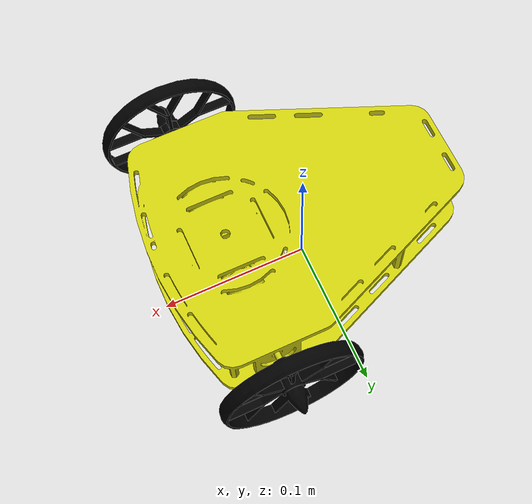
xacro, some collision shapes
<?xml version="1.0"?>
<robot xmlns:xacro="http://www.ros.org/wiki/xacro" name="Puzzlebot_Hacker_Ed.">

<xacro:arg name="prefix" default=""/>

<!-- files for gazebo costumization -->
<xacro:include filename="$(find puzzlebot_description)/urdf/mcr2_mechanical/puzzlebot_hacker_base.urdf.xacro"/>
<xacro:include filename="$(find puzzlebot_description)/urdf/mcr2_robots/hacker_ed/parameters_hacker_ed.xacro" />
<xacro:include filename="$(find puzzlebot_description)/urdf/mcr2_misc/materials.xacro" />
<xacro:include filename="$(find puzzlebot_description)/urdf/mcr2_misc/macros.xacro" />

<xacro:include filename="$(find puzzlebot_description)/urdf/mcr2_sensors/laser_camera_bracket.xacro" />
<xacro:include filename="$(find puzzlebot_description)/urdf/mcr2_control/gazebo_control.xacro" />

<!--LINKS-->

<xacro:puzzlebot_hacker_ed_base prefix="$(arg prefix)" />
<xacro:puzzlebot_control prefix="$(arg prefix)" />

</robot>

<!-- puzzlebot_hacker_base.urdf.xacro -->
<robot xmlns:xacro="http://www.ros.org/wiki/xacro" name="puzzlebot_hacker_ed_base">

<xacro:macro name="puzzlebot_hacker_ed_base" params="prefix">

    <!-- Dummy link to fix robot chassis -->
    <link name="${prefix}base_footprint">
    </link>

    <link name="${prefix}base_link">
        <visual>
            <origin xyz="${chassis_mesh_pos_x} ${chassis_mesh_pos_y} ${chassis_mesh_pos_z}" rpy="${chassis_mesh_pos_r} ${chassis_mesh_pos_p} ${chassis_mesh_pos_w}"/>
            <geometry>
                <mesh filename="file://${mesh_puzzlebot_chassis}"/>
            </geometry>
            <material name="yellow"/>
        </visual>

        <collision>
            <origin xyz="${chassis_collision_pos_x} ${chassis_collision_pos_y} ${chassis_collision_pos_z}" rpy="${chassis_collision_pos_r} ${chassis_collision_pos_p} ${chassis_collision_pos_w}"/>
            <geometry>
                <box size="${chassis_length} ${chassis_width} ${chassis_height}"/>
            </geometry>
        </collision>

        <inertial>
            <origin xyz="-${chassis_inertia_pos_x} ${chassis_inertia_pos_y} ${chassis_inertia_pos_z}" rpy="${chassis_inertia_pos_r} ${chassis_inertia_pos_p} ${chassis_inertia_pos_w}"/>
            <mass value="${chassis_mass}"/>
            <xacro:box_inertia mass="${chassis_mass}" x="${chassis_length}" y="${chassis_width}" z="${chassis_height}" />
        </inertial>
    </link>

    <link name="${prefix}wheel_left_link">
        <visual>
            <origin xyz="${wheel_mesh_pos_x} ${wheel_mesh_pos_y} ${wheel_mesh_pos_z}" rpy="${wheel_mesh_pos_r} ${wheel_mesh_pos_p} ${wheel_mesh_pos_w}" />
            <geometry>
                <mesh filename="file://${mesh_puzzlebot_wheel}"/>
            </geometry>
            <material name="black"/>
        </visual>

        <collision>
            <origin xyz="${wheel_collision_pos_x} ${wheel_collision_pos_y} ${wheel_collision_pos_z}" rpy="${wheel_collision_pos_r} ${wheel_collision_pos_p} ${wheel_collision_pos_w}"/>
            <geometry>
                <cylinder length="${wheel_height}" radius="${wheel_radius}" />
            </geometry>
        </collision>

        <inertial>
            <origin xyz="${wheel_inertia_pos_x} ${wheel_inertia_pos_y} ${wheel_inertia_pos_z}" rpy="${wheel_inertia_pos_r} ${wheel_inertia_pos_p} ${wheel_inertia_pos_w}"/>
            <mass value="${wheel_mass}"/>
            <xacro:cylinderical_tube_inertia r1="${wheel_radius}" r2="${wheel_radius/4.0}" height="${wheel_height}" mass="${wheel_mass}"/>
        </inertial>
    </link>

    <link name="${prefix}wheel_right_link">
        <visual>
            <origin xyz="${wheel_mesh_pos_x} ${wheel_mesh_pos_y} ${wheel_mesh_pos_z}" rpy="-${wheel_mesh_pos_r} ${wheel_mesh_pos_p} ${wheel_mesh_pos_w}" />
            <geometry>
                <mesh filename="file://${mesh_puzzlebot_wheel}"/>
            </geometry>
            <material name="black"/>
        </visual>

        <collision>
            <origin xyz="${wheel_collision_pos_x} ${wheel_collision_pos_y} ${wheel_collision_pos_z}" rpy="-${wheel_collision_pos_r} ${wheel_collision_pos_p} ${wheel_collision_pos_w}"/>
            <geometry>
                <cylinder length="${wheel_height}" radius="${wheel_radius}" />
            </geometry>
        </collision>

        <inertial>
            <origin xyz="${wheel_inertia_pos_x} ${wheel_inertia_pos_y} ${wheel_inertia_pos_z}" rpy="-${wheel_inertia_pos_r} ${wheel_inertia_pos_p} ${wheel_inertia_pos_w}"/>
            <mass value="${wheel_mass}"/>
            <xacro:cylinderical_tube_inertia r1="${wheel_radius}" r2="${wheel_radius/4.0}" height="${wheel_height}" mass="${wheel_mass}"/>
        </inertial>
    </link>

    <link name="${prefix}caster_holder_link">
        <visual>
            <origin xyz="${casterholder_mesh_pos_x} ${casterholder_mesh_pos_y} ${casterholder_mesh_pos_z}" rpy="${casterholder_mesh_pos_r} ${casterholder_mesh_pos_p} ${casterholder_mesh_pos_w}"/>
            <geometry>
                <mesh filename="file://${mesh_puzzlebot_caster}"/>
            </geometry>
            <material name="black"/>
        </visual>

        <collision>
            <origin xyz="${casterholder_collision_pos_x} ${casterholder_collision_pos_y} ${casterholder_collision_pos_z}" rpy="${casterholder_collision_pos_r} ${casterholder_collision_pos_p} ${casterholder_collision_pos_w}"/>
            <geometry>
                <box size="${casterholder_length} ${casterholder_width} ${casterholder_height}"/>
            </geometry>
        </collision>

        <inertial>
            <origin xyz="${casterholder_inertia_pos_x} ${casterholder_inertia_pos_y} ${casterholder_inertia_pos_z}" rpy="${casterholder_inertia_pos_r} ${casterholder_inertia_pos_p} ${casterholder_inertia_pos_w}"/>
            <mass value="${casterholder_mass}"/>
            <xacro:box_inertia mass="${casterholder_mass}" x="${casterholder_length}" y="${casterholder_width}" z="${casterholder_height}" />
        </inertial>
    </link>

    <link name="${prefix}wheel_caster_link">
        <collision>
            <origin xyz="${casterball_collision_pos_x} ${casterball_collision_pos_y} ${casterball_collision_pos_z}" rpy="${casterball_collision_pos_r} ${casterball_collision_pos_p} ${casterball_collision_pos_w}"/>
            <geometry>
                <sphere radius="${casterball_radius}"/>
            </geometry>
        </collision>

        <inertial>
            <origin xyz="${casterball_inertia_pos_x} ${casterball_inertia_pos_y} ${casterball_inertia_pos_z}" rpy="${casterball_inertia_pos_r} ${casterball_inertia_pos_p} ${casterball_inertia_pos_w}"/>
            <mass value="${casterball_mass}"/>
            <xacro:solid_sphere_inertia mass="${casterball_mass}" radius="${casterball_radius}" />
        </inertial>
    </link>

    <!--JOINTS-->

    <joint name="${prefix}chassis_joint" type="fixed">
        <parent link="${prefix}base_footprint"/>
        <child link="${prefix}base_link"/>
        <origin xyz="${chassis_pos_x} ${chassis_pos_y} ${chassis_pos_z}" rpy="${chassis_pos_r} ${chassis_pos_p} ${chassis_pos_w}"/>
    </joint>

    <joint name="${prefix}wheel_right_joint" type="continuous">
        <parent link="${prefix}base_link"/>
        <child link="${prefix}wheel_right_link"/>
        <origin xyz="${wheel_pos_x} -${wheel_pos_y} ${wheel_pos_z}" rpy="${wheel_pos_r} ${wheel_pos_p} ${wheel_pos_w}"/>
        <axis xyz="0 1 0"/>
    </joint>

    <joint name="${prefix}wheel_left_joint" type="continuous">
        <parent link="${prefix}base_link"/>
        <child link="${prefix}wheel_left_link"/>
        <origin xyz="${wheel_pos_x} ${wheel_pos_y} ${wheel_pos_z}" rpy="${wheel_pos_r} ${wheel_pos_p} ${wheel_pos_w}"/>
        <axis xyz="0 1 0"/>
    </joint>

    <joint name="${prefix}caster_holder_joint" type="fixed">
        <parent link="${prefix}base_link"/>
        <child link="${prefix}caster_holder_link"/>
        <origin xyz="${casterholder_pos_x} ${casterholder_pos_y} ${casterholder_pos_z}" rpy="${casterholder_pos_r} ${casterholder_pos_p} ${casterholder_pos_w}"/>
    </joint>

    <joint name="${prefix}wheel_caster_joint" type="fixed">
        <parent link="${prefix}caster_holder_link"/>
        <child link="${prefix}wheel_caster_link"/>
        <origin xyz="${casterball_pos_x} ${casterball_pos_y} ${casterball_pos_z}" rpy="${casterball_pos_r} ${casterball_pos_p} ${casterball_pos_w}"/>
    </joint>

    <gazebo reference="${prefix}wheel_left_link">
        <mu1>1.0</mu1>
        <mu2>1.0</mu2>
        <kp>700000.0</kp>
        <kd>80.0</kd>
        <minDepth>0.001</minDepth>
        <maxVel>0.1</maxVel>
        <material>Gazebo/Black</material>
        <fdir1>1 0 0</fdir1>
    </gazebo>

    <gazebo reference="${prefix}wheel_right_link">
        <mu1>1.0</mu1>
        <mu2>1.0</mu2>
        <kp>700000.0</kp>
        <kd>80.0</kd>
        <minDepth>0.001</minDepth>
        <maxVel>0.1</maxVel>
        <material>Gazebo/Black</material>
        <fdir1>1 0 0</fdir1>
    </gazebo>

    <gazebo reference="${prefix}wheel_caster_link">
        <mu1>0.08</mu1>
        <mu2>0.08</mu2>
        <kp>700000.0</kp>
        <kd>80.0</kd>
        <minDepth>0.001</minDepth>
        <maxVel>0.1</maxVel>
        <fdir1>1 0 0</fdir1>
        <material>Gazebo/Black</material>
    </gazebo>

</xacro:macro>
</robot>

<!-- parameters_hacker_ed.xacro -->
<robot xmlns:xacro="http://www.ros.org/wiki/xacro">

    <!--General parameters-->
    <xacro:property name="PI" value="3.1415926535897931"/>

    <!--Puzzlebot parameters-->
        <!--General parameters-->
            <xacro:property name="wheel_base_distance" value="0.19"/>

    <!--Chassis-->
        <!--Chassis Inertial/Collision parameters-->
            <xacro:property name="chassis_mass" value="0.351"/>
            <xacro:property name="chassis_length" value="0.2"/>
            <xacro:property name="chassis_width" value="0.16"/>
            <xacro:property name="chassis_height" value="0.0503"/>

            <xacro:property name="chassis_inertia_pos_x" value="0.00"/>
            <xacro:property name="chassis_inertia_pos_y" value="0.0"/>
            <xacro:property name="chassis_inertia_pos_z" value="0.00"/>
            <xacro:property name="chassis_inertia_pos_r" value="0.00"/>
            <xacro:property name="chassis_inertia_pos_p" value="0.0"/>
            <xacro:property name="chassis_inertia_pos_w" value="0.0"/>

            <xacro:property name="chassis_collision_pos_x" value="0.0"/>
            <xacro:property name="chassis_collision_pos_y" value="0.0"/>
            <xacro:property name="chassis_collision_pos_z" value="0.0"/>
            <xacro:property name="chassis_collision_pos_r" value="0.0"/>
            <xacro:property name="chassis_collision_pos_p" value="0.0"/>
            <xacro:property name="chassis_collision_pos_w" value="0.0"/>

        <!--Chassis Visual parameters-->
            <xacro:property name="chassis_mesh_pos_x" value="0.0"/>
            <xacro:property name="chassis_mesh_pos_y" value="0.0"/>
            <xacro:property name="chassis_mesh_pos_z" value="0.0"/>
            <xacro:property name="chassis_mesh_pos_r" value="0.0"/>
            <xacro:property name="chassis_mesh_pos_p" value="0.0"/>
            <xacro:property name="chassis_mesh_pos_w" value="0.0"/>

        <!--Chassis Joint parameters-->
            <xacro:property name="chassis_pos_x" value="0.0"/>
            <xacro:property name="chassis_pos_y" value="0.0"/>
            <xacro:property name="chassis_pos_z" value="0.05"/>
            <xacro:property name="chassis_pos_r" value="0.0"/>
            <xacro:property name="chassis_pos_p" value="0.0"/>
            <xacro:property name="chassis_pos_w" value="0.0"/>

    <!--Caster Holder-->
        <!--Caster Holder Inertial/Collision parameters-->
            <xacro:property name="casterholder_mass" value="0.007"/>
            <xacro:property name="casterholder_length" value="0.0175"/>
            <xacro:property name="casterholder_width" value="0.023"/>
            <xacro:property name="casterholder_height" value="0.011150"/>

            <xacro:property name="casterholder_inertia_pos_x" value="0.0"/>
            <xacro:property name="casterholder_inertia_pos_y" value="0.0"/>
            <xacro:property name="casterholder_inertia_pos_z" value="0.0"/>
            <xacro:property name="casterholder_inertia_pos_r" value="0.0"/>
            <xacro:property name="casterholder_inertia_pos_p" value="0.0"/>
            <xacro:property name="casterholder_inertia_pos_w" value="0.0"/>

            <xacro:property name="casterholder_collision_pos_x" value="0.0"/>
            <xacro:property name="casterholder_collision_pos_y" value="0.0"/>
            <xacro:property name="casterholder_collision_pos_z" value="0.0"/>
            <xacro:property name="casterholder_collision_pos_r" value="0.0"/>
            <xacro:property name="casterholder_collision_pos_p" value="0.0"/>
            <xacro:property name="casterholder_collision_pos_w" value="0.0"/>

        <!--Caster Holder Visual parameters-->
            <xacro:property name="casterholder_mesh_pos_x" value="0.0"/>
            <xacro:property name="casterholder_mesh_pos_y" value="0.0"/>
            <xacro:property name="casterholder_mesh_pos_z" value="-0.012"/>
            <xacro:property name="casterholder_mesh_pos_r" value="0.0"/>
            <xacro:property name="casterholder_mesh_pos_p" value="0.0"/>
            <xacro:property name="casterholder_mesh_pos_w" value="0.0"/>

        <!--Caster Holder Joint parameters-->
            <xacro:property name="casterholder_pos_x" value="-0.095"/>
            <xacro:property name="casterholder_pos_y" value="0.0"/>
            <xacro:property name="casterholder_pos_z" value="-0.030725"/>
            <xacro:property name="casterholder_pos_r" value="0.0"/>
            <xacro:property name="casterholder_pos_p" value="0.0"/>
            <xacro:property name="casterholder_pos_w" value="0.0"/>

    <!--Caster Ball-->
        <!--Caster Ball Inertial/Collision parameters-->
            <xacro:property name="casterball_mass" value="0.009"/>
            <xacro:property name="casterball_radius" value="0.0065"/>

            <xacro:property name="casterball_inertia_pos_x" value="0.0"/>
            <xacro:property name="casterball_inertia_pos_y" value="0.0"/>
            <xacro:property name="casterball_inertia_pos_z" value="0.0"/>
            <xacro:property name="casterball_inertia_pos_r" value="0.0"/>
            <xacro:property name="casterball_inertia_pos_p" value="0.0"/>
            <xacro:property name="casterball_inertia_pos_w" value="0.0"/>

            <xacro:property name="casterball_collision_pos_x" value="0.0"/>
            <xacro:property name="casterball_collision_pos_y" value="0.0"/>
            <xacro:property name="casterball_collision_pos_z" value="0.0"/>
            <xacro:property name="casterball_collision_pos_r" value="0.0"/>
            <xacro:property name="casterball_collision_pos_p" value="0.0"/>
            <xacro:property name="casterball_collision_pos_w" value="0.0"/>

        <!--Caster Ball Visual parameters-->
            <xacro:property name="casterball_mesh_pos_x" value="0.0"/>
            <xacro:property name="casterball_mesh_pos_y" value="0.0"/>
            <xacro:property name="casterball_mesh_pos_z" value="0.0"/>
            <xacro:property name="casterball_mesh_pos_r" value="0.0"/>
            <xacro:property name="casterball_mesh_pos_p" value="0.0"/>
            <xacro:property name="casterball_mesh_pos_w" value="0.0"/>

        <!--Caster Ball Joint parameters-->
            <xacro:property name="casterball_pos_x" value="0.0"/>
            <xacro:property name="casterball_pos_y" value="0.0"/>
            <xacro:property name="casterball_pos_z" value="-0.012538"/>
            <xacro:property name="casterball_pos_r" value="0.0"/>
            <xacro:property name="casterball_pos_p" value="0.0"/>
            <xacro:property name="casterball_pos_w" value="0.0"/>

    <!--Wheel-->
        <!--Wheel Inertial/Collision parameters-->
            <xacro:property name="wheel_mass" value="0.027"/>
            <xacro:property name="wheel_height" value="0.012"/>
            <xacro:property name="wheel_radius" value="0.05"/>

            <xacro:property name="wheel_inertia_pos_x" value="0.0"/>
            <xacro:property name="wheel_inertia_pos_y" value="0.0"/>
            <xacro:property name="wheel_inertia_pos_z" value="0.0"/>
            <xacro:property name="wheel_inertia_pos_r" value="0.0"/>
            <xacro:property name="wheel_inertia_pos_p" value="0.0"/>
            <xacro:property name="wheel_inertia_pos_w" value="0.0"/>

            <xacro:property name="wheel_collision_pos_x" value="0.0"/>
            <xacro:property name="wheel_collision_pos_y" value="0.0"/>
            <xacro:property name="wheel_collision_pos_z" value="0.0"/>
            <xacro:property name="wheel_collision_pos_r" value="${PI/2}"/>
            <xacro:property name="wheel_collision_pos_p" value="0.0"/>
            <xacro:property name="wheel_collision_pos_w" value="0.0"/>

        <!--Wheel Visual parameters-->
            <xacro:property name="wheel_mesh_pos_x" value="0.0"/>
            <xacro:property name="wheel_mesh_pos_y" value="0.0"/>
            <xacro:property name="wheel_mesh_pos_z" value="0.0"/>
            <xacro:property name="wheel_mesh_pos_r" value="${PI/2}"/>
            <xacro:property name="wheel_mesh_pos_p" value="0.0"/>
            <xacro:property name="wheel_mesh_pos_w" value="0.0"/>

        <!--Wheel Joint parameters-->
            <xacro:property name="wheel_pos_x" value="0.052"/>
            <xacro:property name="wheel_pos_y" value="${wheel_base_distance/2}"/>
            <xacro:property name="wheel_pos_z" value="0.0"/>
            <xacro:property name="wheel_pos_r" value="0.0"/>
            <xacro:property name="wheel_pos_p" value="0.0"/>
            <xacro:property name="wheel_pos_w" value="0.0"/>

    <!--Meshes -->
        <xacro:property name="mesh_puzzlebot_chassis"  value="$(find puzzlebot_description)/meshes/bases/Puzzlebot_Hacker_Editon_Base.stl" />
        <xacro:property name="mesh_puzzlebot_wheel"  value="$(find puzzlebot_description)/meshes/wheels/Puzzlebot_Wheel.stl" />
        <xacro:property name="mesh_puzzlebot_caster"  value="$(find puzzlebot_description)/meshes/wheels/Puzzlebot_Caster_Wheel.stl" />
</robot>

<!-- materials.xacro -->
<robot xmlns:xacro="http://www.ros.org/wiki/xacro">
  <material name="black">
    <color rgba="0.0 0.0 0.0 1.0"/>
  </material>
  <material name="blue">
    <color rgba="0.203125 0.23828125 0.28515625 1.0"/>
  </material>
  <material name="green">
    <color rgba="0.0 0.8 0.0 1.0"/>
  </material>
  <material name="grey">
    <color rgba="0.2 0.2 0.2 1.0"/>
  </material>
  <material name="orange">
    <color rgba="1.0 0.423529411765 0.0392156862745 1.0"/>
  </material>
  <material name="brown">
    <color rgba="0.870588235294 0.811764705882 0.764705882353 1.0"/>
  </material>
  <material name="red">
    <color rgba="0.80078125 0.12890625 0.1328125 1.0"/>
  </material>
  <material name="white">
    <color rgba="1.0 1.0 1.0 1.0"/>
  </material>
  <material name="cyan">
    <color rgba="0.01 0.8 0.8 1.0"/>
  </material>
  <material name="yellow">
    <color rgba="0.8 0.8 0.05 1.0"/>
  </material>
</robot>

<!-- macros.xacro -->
<robot xmlns:xacro="http://www.ros.org/wiki/xacro">

<!-- https://en.wikipedia.org/wiki/List_of_moments_of_inertia-->
<!--https://www.mikipulley.co.jp/EN/Services/Tech_data/tech24.html-->
<!--Rotating around z (unless otherwise specified)-->

    <xacro:macro name="box_inertia" params="mass x y z">
            <inertia
          ixx="${mass/12.0 * (y*y + z*z)}" ixy="0.0" ixz="0.0"
          iyy="${mass/12.0 * (z*z + x*x)}" iyz="0.0"
          izz="${mass/12.0 * (y*y + x*x)}"/>
    </xacro:macro>

    <xacro:macro name="cylinderical_tube_inertia" params="r1 r2 height mass">
               <inertia
                ixx="${(mass/12.0) * (3 * (r2*r2 + r1*r1) + height*height)}" ixy="0.0" ixz="0.0"
                iyy="${(mass/12.0) * (3 * (r2*r2 + r1*r1) + height*height)}" iyz="0.0"
                izz="${(mass/2.0) * (r2*r2 + r1*r1)}" />
    </xacro:macro>

    <xacro:macro name="solid_sphere_inertia" params="mass radius">
              <inertia
                ixx="${2.0*mass*(radius*radius)/5.0}" ixy="0.0" ixz="0.0"
                iyy="${2.0*mass*(radius*radius)/5.0}" iyz="0.0"
                izz="${2.0*mass*(radius*radius)/5.0}"/>
    </xacro:macro>

    <xacro:macro name="cylinder_inertia" params="radius height mass">
               <inertia
                ixx="${(mass/12.0) * (3 * (radius*radius) + height*height)}" ixy="0.0" ixz="0.0"
                iyy="${(mass/12.0) * (3 * (radius*radius) + height*height)}" iyz="0.0"
                izz="${(mass/2.0) * (radius*radius)}" />
    </xacro:macro>

</robot>
